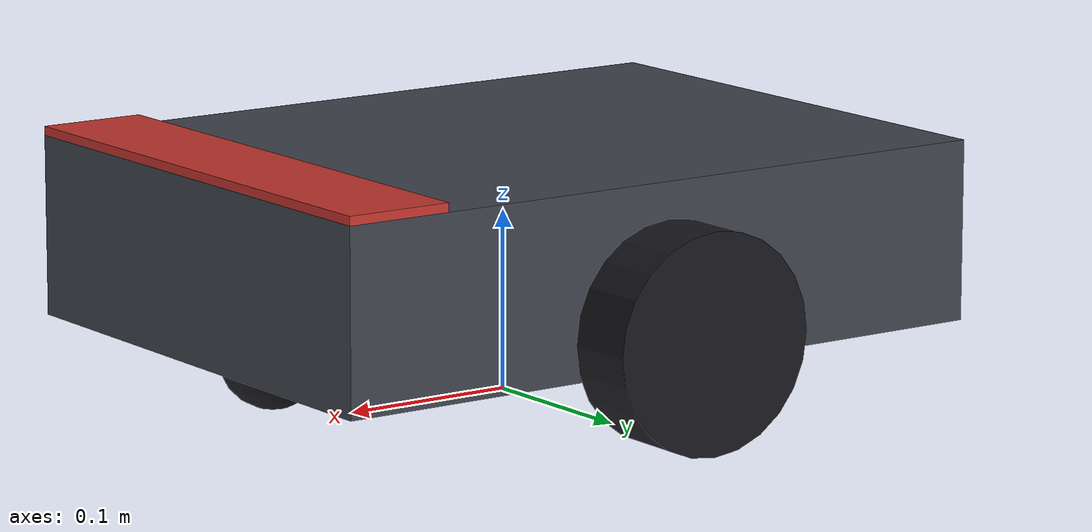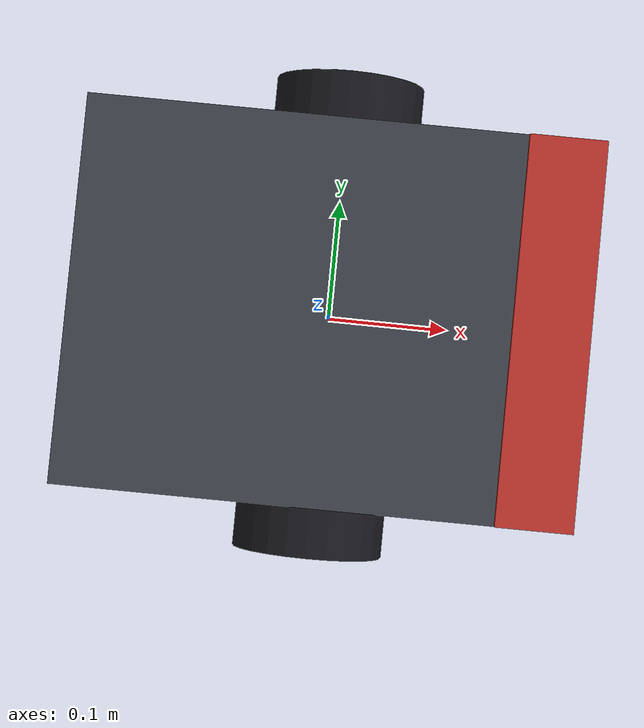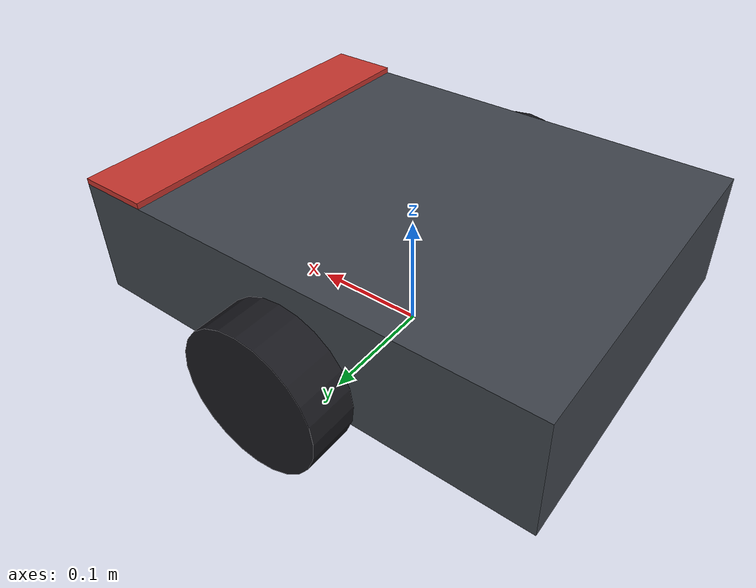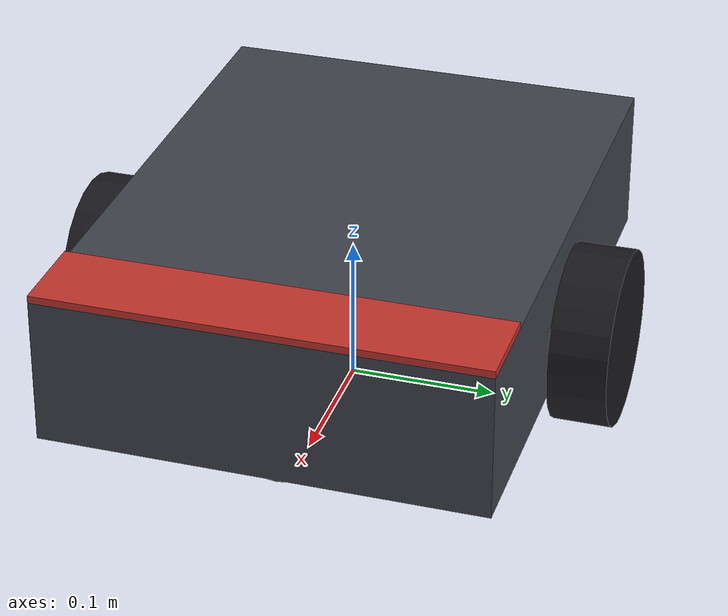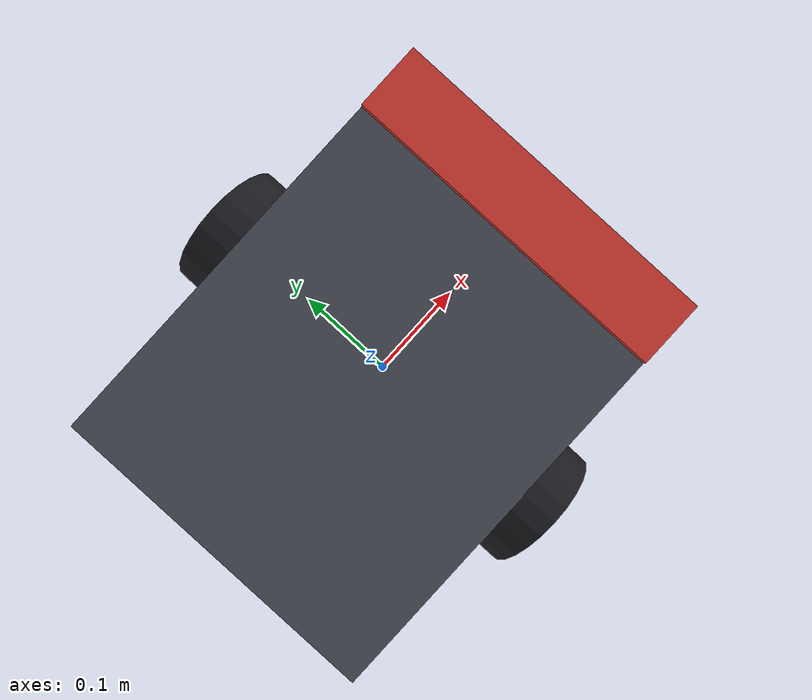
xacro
<?xml version="1.0"?>
<robot xmlns:xacro="http://www.ros.org/wiki/xacro" name="mini_bot">

  <xacro:arg name="namespace" default=""/>
  <xacro:arg name="prefix"    default=""/>
  <xacro:property name="ns"     value="$(arg namespace)"/>
  <xacro:property name="prefix" value="$(arg prefix)"/>
  <!-- Con namespace vacío los topics quedan /scan; con namespace, /robot_a/scan -->
  <xacro:property name="tns" value="${'/' + ns if ns else ''}"/>

  <xacro:include filename="$(find mini_bot)/urdf/inertials.xacro"/>

  <!-- Medidas del robot, en un solo sitio -->
  <xacro:property name="base_x"      value="0.40"/>
  <xacro:property name="base_y"      value="0.30"/>
  <xacro:property name="base_z"      value="0.10"/>
  <xacro:property name="base_mass"   value="5.0"/>
  <xacro:property name="wheel_r"     value="0.06"/>
  <xacro:property name="wheel_l"     value="0.04"/>
  <xacro:property name="wheel_mass"  value="0.5"/>
  <xacro:property name="wheel_sep"   value="0.34"/>
  <xacro:property name="caster_r"    value="0.03"/>

  <material name="body_grey"><color rgba="0.25 0.27 0.30 1.0"/></material>
  <material name="accent_red"><color rgba="0.78 0.21 0.18 1.0"/></material>
  <material name="dark"><color rgba="0.10 0.10 0.12 1.0"/></material>

  <!-- ====================== PREÁMBULO 1: GEOMETRÍA ============================ -->
  <!-- PASOS 1 a 3. Después de cada uno, relanza display.launch.py. -->

  <!-- base_footprint: link vacío a ras de suelo. Es el frame fijo de RViz. -->
  <link name="${prefix}base_footprint"/>

  <!-- base_link: la caja. Patrón de todo link: visual + collision + inertial. -->
  <link name="${prefix}base_link">
    <visual>
      <origin xyz="0 0 0" rpy="0 0 0"/>
      <geometry><box size="${base_x} ${base_y} ${base_z}"/></geometry>
      <material name="body_grey"/>
    </visual>
    <visual>
      <origin xyz="${base_x/2 - 0.03} 0 ${base_z/2 + 0.0025}" rpy="0 0 0"/>
      <geometry><box size="0.06 ${base_y} 0.005"/></geometry>
      <material name="accent_red"/>
    </visual>
    <collision>
      <origin xyz="0 0 0" rpy="0 0 0"/>
      <geometry><box size="${base_x} ${base_y} ${base_z}"/></geometry>
    </collision>
    <xacro:box_inertia m="${base_mass}" x="${base_x}" y="${base_y}" z="${base_z}"/>
  </link>

  <joint name="base_joint" type="fixed">
    <parent link="${prefix}base_footprint"/>
    <child  link="${prefix}base_link"/>
    <!-- PASO 1: con este origen, la caja queda a medias bajo el suelo. El de debajo la eleva
         hasta el eje de las ruedas. -->
    <origin xyz="0 0 ${wheel_r + base_z/2 - 0.02}" rpy="0 0 0"/>
  </joint>

  <!-- PASO 2: las ruedas. Una macro, instanciada dos veces: 'reflect' vale 1 (izquierda)
       o -1 (derecha) y pone cada rueda a un lado con el mismo código. -->
  <xacro:macro name="wheel" params="side reflect">
    <link name="${prefix}${side}_wheel_link">
      <visual>
        <origin xyz="0 0 0" rpy="${pi/2} 0 0"/>
        <geometry><cylinder radius="${wheel_r}" length="${wheel_l}"/></geometry>
        <material name="dark"/>
      </visual>
      <collision>
        <origin xyz="0 0 0" rpy="${pi/2} 0 0"/>
        <geometry><cylinder radius="${wheel_r}" length="${wheel_l}"/></geometry>
      </collision>
      <xacro:cylinder_inertia m="${wheel_mass}" r="${wheel_r}" l="${wheel_l}"/>
    </link>

    <joint name="${side}_wheel_joint" type="continuous">
      <parent link="${prefix}base_link"/>
      <child  link="${prefix}${side}_wheel_link"/>
      <origin xyz="0 ${reflect * wheel_sep/2} ${-base_z/2 + 0.02}" rpy="0 0 0"/>
      <axis xyz="0 1 0"/>
      <dynamics damping="0.05" friction="0.01"/>
    </joint>

    <gazebo reference="${prefix}${side}_wheel_link">
      <mu1>1.0</mu1>
      <mu2>1.0</mu2>
    </gazebo>
  </xacro:macro>

  <xacro:wheel side="left"  reflect="1"/>
  <xacro:wheel side="right" reflect="-1"/>

  <!-- PASO 3: la rueda loca. Una esfera con joint fijo y rozamiento 0 en Gazebo. -->
  <link name="${prefix}caster_link">
    <visual>
      <geometry><sphere radius="${caster_r}"/></geometry>
      <material name="dark"/>
    </visual>
    <collision>
      <geometry><sphere radius="${caster_r}"/></geometry>
    </collision>
    <xacro:sphere_inertia m="0.2" r="${caster_r}"/>
  </link>

  <joint name="caster_joint" type="fixed">
    <parent link="${prefix}base_link"/>
    <child  link="${prefix}caster_link"/>
    <origin xyz="${base_x/2 - 0.05} 0 ${-base_z/2 - caster_r + 0.03}" rpy="0 0 0"/>
  </joint>

  <gazebo reference="${prefix}caster_link">
    <mu1>0.0</mu1>
    <mu2>0.0</mu2>
  </gazebo>

  <!-- ====================== PREÁMBULO 2: SENSORES ============================= -->

  <!-- PASO 7: LiDAR, 180 muestras a 5 Hz entre -90° y +90°, de 0,12 a 8 m. Publica en Gazebo en ${tns}/scan. -->

  <!-- PASO 8: cámara de 320 × 240 a 10 Hz, en el morro. Publica en Gazebo en ${tns}/camera/image. -->

  <!-- ====================== EJERCICIO 2: SENSORES NUEVOS ====================== -->
  <!-- Pega aquí los sensores del ejercicio 2. -->

  <!-- ====================== PREÁMBULO 3: ros2_control ========================= -->

</robot>

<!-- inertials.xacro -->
<!-- Macros de inercia. No hace falta tocarlas en el taller: se usan tal cual. -->
<robot xmlns:xacro="http://www.ros.org/wiki/xacro">

  <xacro:macro name="box_inertia" params="m x y z">
    <inertial>
      <mass value="${m}"/>
      <inertia ixx="${m*(y*y+z*z)/12.0}" ixy="0.0" ixz="0.0"
               iyy="${m*(x*x+z*z)/12.0}" iyz="0.0"
               izz="${m*(x*x+y*y)/12.0}"/>
    </inertial>
  </xacro:macro>

  <xacro:macro name="cylinder_inertia" params="m r l">
    <inertial>
      <mass value="${m}"/>
      <inertia ixx="${m*(3*r*r+l*l)/12.0}" ixy="0.0" ixz="0.0"
               iyy="${m*(3*r*r+l*l)/12.0}" iyz="0.0"
               izz="${m*r*r/2.0}"/>
    </inertial>
  </xacro:macro>

  <xacro:macro name="sphere_inertia" params="m r">
    <inertial>
      <mass value="${m}"/>
      <inertia ixx="${2.0*m*r*r/5.0}" ixy="0.0" ixz="0.0"
               iyy="${2.0*m*r*r/5.0}" iyz="0.0"
               izz="${2.0*m*r*r/5.0}"/>
    </inertial>
  </xacro:macro>

</robot>
